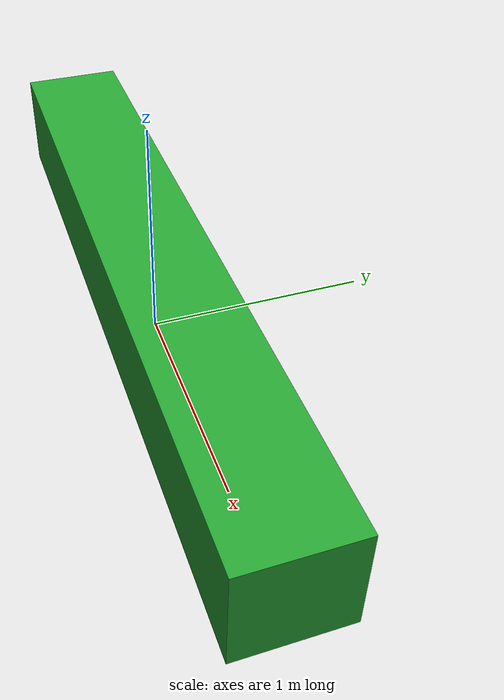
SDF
<?xml version='1.0'?>
<sdf version="1.6">
  <model name="long_green_chair">
    <static>true</static>
    <link name="link">
      <pose>0 0 0.235 0 0 0</pose>

      <collision name="collision">
        <geometry>
          <box>
            <size>3.27 0.47 0.47</size>
          </box>
        </geometry>
      </collision>

      <visual name="visual">
        <geometry>
          <box>
            <size>3.27 0.47 0.47</size>
          </box>
        </geometry>
        <material>
          <script>
            <uri>file://media/materials/scripts/gazebo.material</uri>
            <name>Gazebo/Green</name>
          </script>
        </material>
      </visual>
    </link>
  </model>
</sdf>
